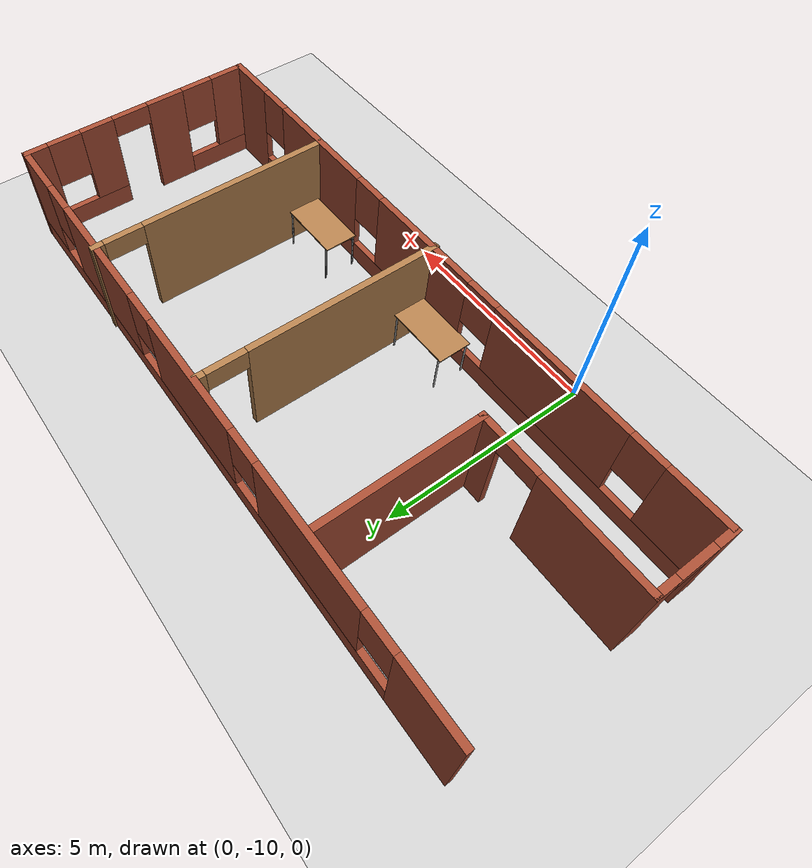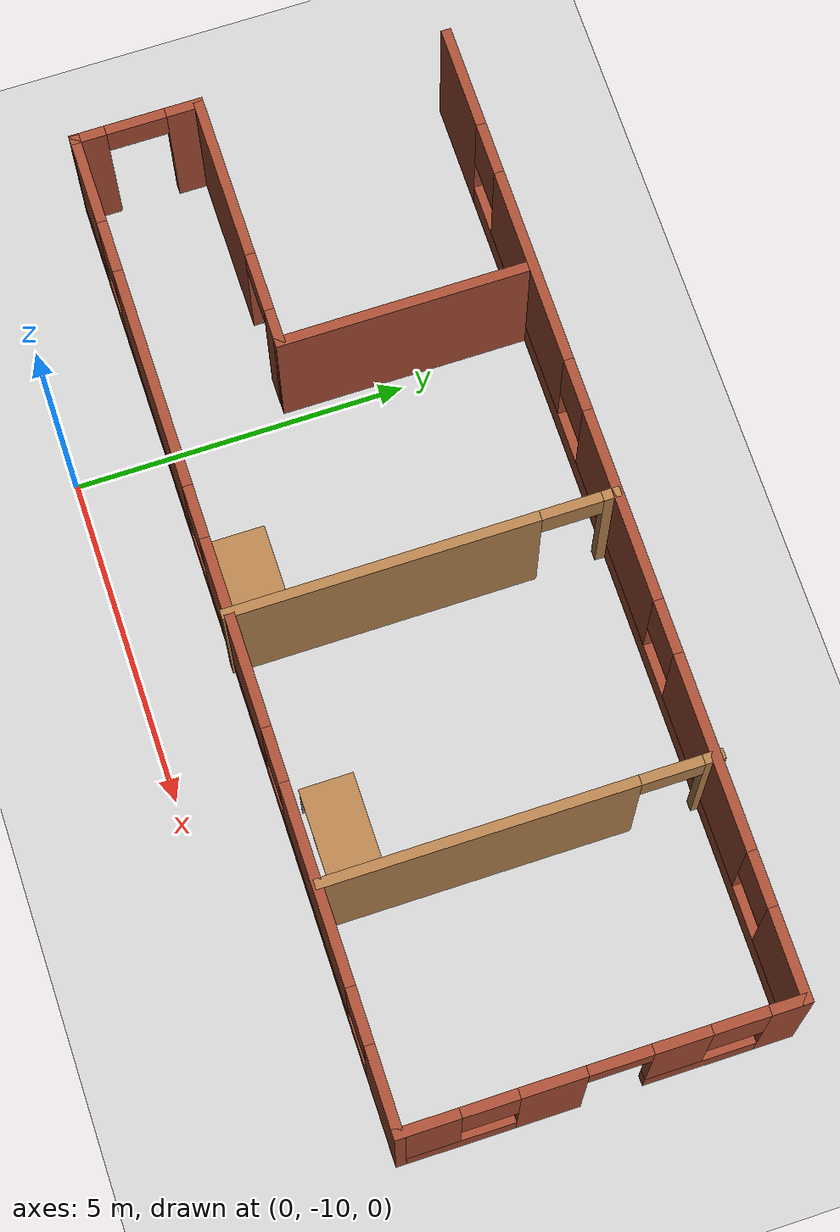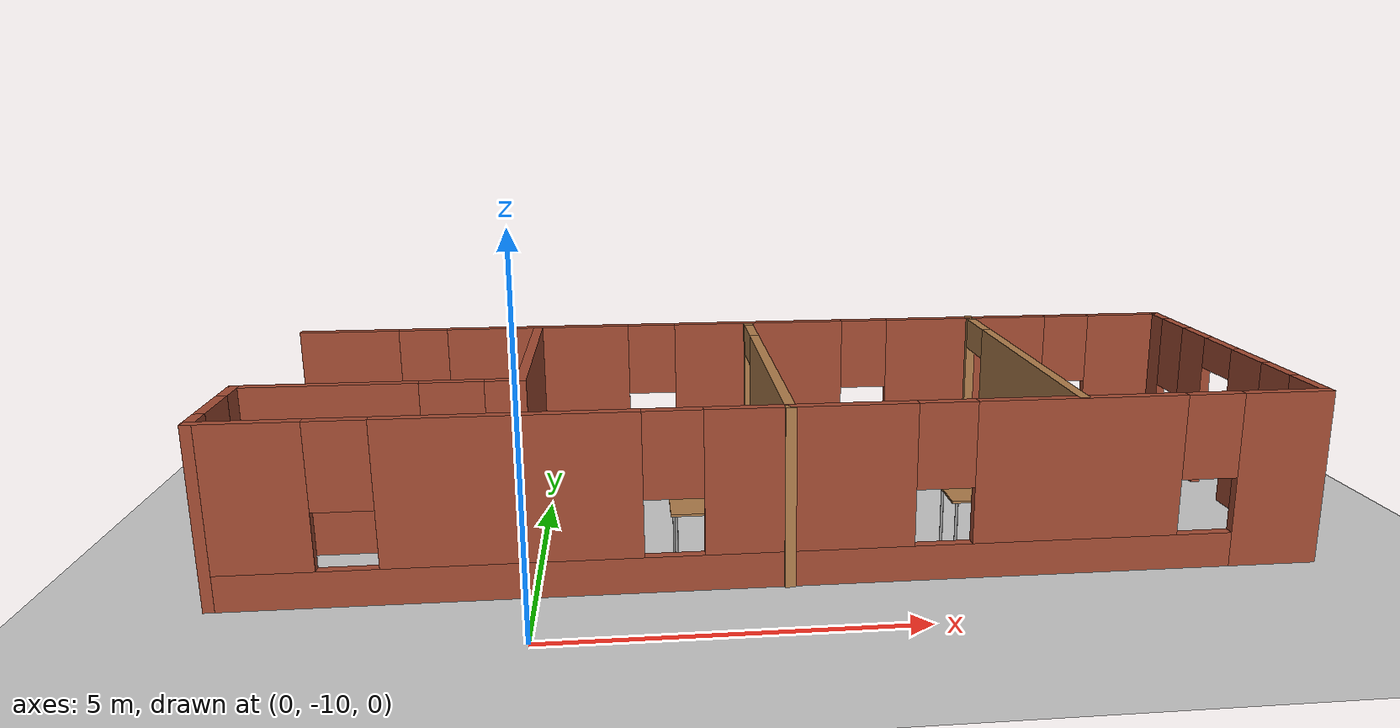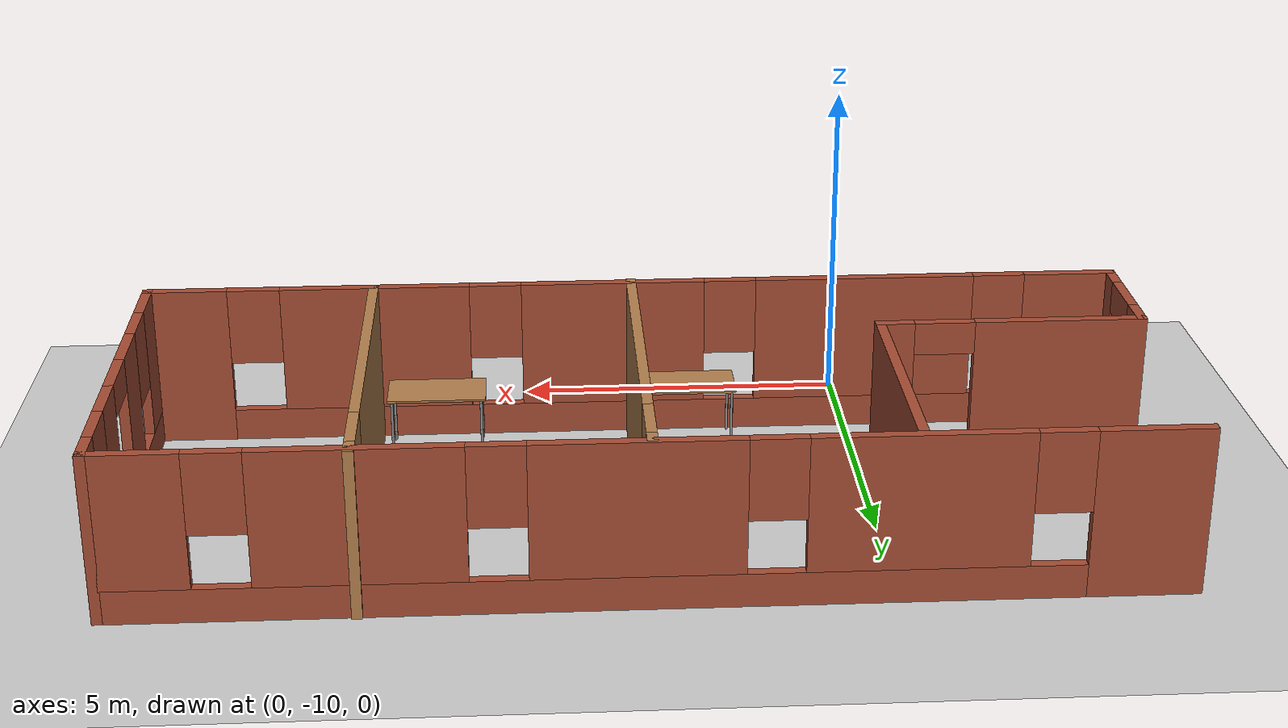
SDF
<sdf version="1.6">
 <world name="default">
  <model name="ground_plane">
   <static>1</static>
   <link name="link">
    <collision name="collision">
     <geometry><plane><normal>0 0 1</normal><size>100 100</size></plane></geometry>
     <surface><friction><ode><mu>100</mu><mu2>50</mu2></ode></friction></surface>
    </collision>
    <visual name="visual">
     <cast_shadows>0</cast_shadows>
     <geometry><plane><normal>0 0 1</normal><size>100 100</size></plane></geometry>
     <material>
      <script><uri>file://media/materials/scripts/gazebo.material</uri><name>Gazebo/Grey</name></script>
     </material>
    </visual>
   </link>
  </model>
  <model name="Building">
   <pose>3.31458 -5.75778 0 0 -0 0</pose>
   <link name="Wall_0">
    <pose>0.030417 2.79778 0 0 -0 0</pose>
    <visual name="Wall_0_Visual_0">
     <pose>-6.69722 0 1.25 0 -0 0</pose>
     <geometry><box><size>1.60557 0.15 2.5</size></box></geometry>
     <material>
      <script><uri>file://media/materials/scripts/gazebo.material</uri><name>Gazebo/Bricks</name></script>
      <ambient>0.996078 0.47451 0.0196078 1</ambient>
     </material>
     <meta><layer>0</layer></meta>
    </visual>
    <collision name="Wall_0_Collision_0">
     <geometry><box><size>1.60557 0.15 2.5</size></box></geometry>
     <pose>-6.69722 0 1.25 0 -0 0</pose>
    </collision>
    <visual name="Wall_0_Visual_1">
     <pose>0.802784 0 0.25 0 -0 0</pose>
     <geometry><box><size>13.3944 0.15 0.5</size></box></geometry>
     <material>
      <script><uri>file://media/materials/scripts/gazebo.material</uri><name>Gazebo/Bricks</name></script>
      <ambient>0.996078 0.47451 0.0196078 1</ambient>
     </material>
     <meta><layer>0</layer></meta>
    </visual>
    <collision name="Wall_0_Collision_1">
     <geometry><box><size>13.3944 0.15 0.5</size></box></geometry>
     <pose>0.802784 0 0.25 0 -0 0</pose>
    </collision>
    <visual name="Wall_0_Visual_2">
     <pose>-3.57459 0 1.5 0 -0 0</pose>
     <geometry><box><size>3.03968 0.15 2</size></box></geometry>
     <material>
      <script><uri>file://media/materials/scripts/gazebo.material</uri><name>Gazebo/Bricks</name></script>
      <ambient>0.996078 0.47451 0.0196078 1</ambient>
     </material>
     <meta><layer>0</layer></meta>
    </visual>
    <collision name="Wall_0_Collision_2">
     <geometry><box><size>3.03968 0.15 2</size></box></geometry>
     <pose>-3.57459 0 1.5 0 -0 0</pose>
    </collision>
    <visual name="Wall_0_Visual_3">
     <pose>0.207263 0 1.5 0 -0 0</pose>
     <geometry><box><size>2.92403 0.15 2</size></box></geometry>
     <material>
      <script><uri>file://media/materials/scripts/gazebo.material</uri><name>Gazebo/Bricks</name></script>
      <ambient>0.996078 0.47451 0.0196078 1</ambient>
     </material>
     <meta><layer>0</layer></meta>
    </visual>
    <collision name="Wall_0_Collision_3">
     <geometry><box><size>2.92403 0.15 2</size></box></geometry>
     <pose>0.207263 0 1.5 0 -0 0</pose>
    </collision>
    <visual name="Wall_0_Visual_4">
     <pose>3.90816 0 1.5 0 -0 0</pose>
     <geometry><box><size>2.87777 0.15 2</size></box></geometry>
     <material>
      <script><uri>file://media/materials/scripts/gazebo.material</uri><name>Gazebo/Bricks</name></script>
      <ambient>0.996078 0.47451 0.0196078 1</ambient>
     </material>
     <meta><layer>0</layer></meta>
    </visual>
    <collision name="Wall_0_Collision_4">
     <geometry><box><size>2.87777 0.15 2</size></box></geometry>
     <pose>3.90816 0 1.5 0 -0 0</pose>
    </collision>
    <visual name="Wall_0_Visual_5">
     <pose>6.82352 0 1.5 0 -0 0</pose>
     <geometry><box><size>1.35296 0.15 2</size></box></geometry>
     <material>
      <script><uri>file://media/materials/scripts/gazebo.material</uri><name>Gazebo/Bricks</name></script>
      <ambient>0.996078 0.47451 0.0196078 1</ambient>
     </material>
     <meta><layer>0</layer></meta>
    </visual>
    <collision name="Wall_0_Collision_5">
     <geometry><box><size>1.35296 0.15 2</size></box></geometry>
     <pose>6.82352 0 1.5 0 -0 0</pose>
    </collision>
    <visual name="Wall_0_Visual_6">
     <pose>-5.49443 0 1.9 0 -0 0</pose>
     <geometry><box><size>0.8 0.15 1.2</size></box></geometry>
     <material>
      <script><uri>file://media/materials/scripts/gazebo.material</uri><name>Gazebo/Bricks</name></script>
      <ambient>0.996078 0.47451 0.0196078 1</ambient>
     </material>
     <meta><layer>0</layer></meta>
    </visual>
    <collision name="Wall_0_Collision_6">
     <geometry><box><size>0.8 0.15 1.2</size></box></geometry>
     <pose>-5.49443 0 1.9 0 -0 0</pose>
    </collision>
    <visual name="Wall_0_Visual_7">
     <pose>-1.65475 0 1.9 0 -0 0</pose>
     <geometry><box><size>0.8 0.15 1.2</size></box></geometry>
     <material>
      <script><uri>file://media/materials/scripts/gazebo.material</uri><name>Gazebo/Bricks</name></script>
      <ambient>0.996078 0.47451 0.0196078 1</ambient>
     </material>
     <meta><layer>0</layer></meta>
    </visual>
    <collision name="Wall_0_Collision_7">
     <geometry><box><size>0.8 0.15 1.2</size></box></geometry>
     <pose>-1.65475 0 1.9 0 -0 0</pose>
    </collision>
    <visual name="Wall_0_Visual_8">
     <pose>2.06928 0 1.9 0 -0 0</pose>
     <geometry><box><size>0.8 0.15 1.2</size></box></geometry>
     <material>
      <script><uri>file://media/materials/scripts/gazebo.material</uri><name>Gazebo/Bricks</name></script>
      <ambient>0.996078 0.47451 0.0196078 1</ambient>
     </material>
     <meta><layer>0</layer></meta>
    </visual>
    <collision name="Wall_0_Collision_8">
     <geometry><box><size>0.8 0.15 1.2</size></box></geometry>
     <pose>2.06928 0 1.9 0 -0 0</pose>
    </collision>
    <visual name="Wall_0_Visual_9">
     <pose>5.74704 0 1.9 0 -0 0</pose>
     <geometry><box><size>0.8 0.15 1.2</size></box></geometry>
     <material>
      <script><uri>file://media/materials/scripts/gazebo.material</uri><name>Gazebo/Bricks</name></script>
      <ambient>0.996078 0.47451 0.0196078 1</ambient>
     </material>
     <meta><layer>0</layer></meta>
    </visual>
    <collision name="Wall_0_Collision_9">
     <geometry><box><size>0.8 0.15 1.2</size></box></geometry>
     <pose>5.74704 0 1.9 0 -0 0</pose>
    </collision>
   </link>
   <link name="Wall_1">
    <pose>7.45542 -0.002216 0 0 0 -1.5708</pose>
    <visual name="Wall_1_Visual_0">
     <pose>-2.5839 0 1.25 0 -0 0</pose>
     <geometry><box><size>0.582198 0.15 2.5</size></box></geometry>
     <material>
      <script><uri>file://media/materials/scripts/gazebo.material</uri><name>Gazebo/Bricks</name></script>
      <ambient>0.996078 0.47451 0.0196078 1</ambient>
     </material>
     <meta><layer>0</layer></meta>
    </visual>
    <collision name="Wall_1_Collision_0">
     <geometry><box><size>0.582198 0.15 2.5</size></box></geometry>
     <pose>-2.5839 0 1.25 0 -0 0</pose>
    </collision>
    <visual name="Wall_1_Visual_1">
     <pose>0.68813 0 1.25 0 -0 0</pose>
     <geometry><box><size>0.931057 0.15 2.5</size></box></geometry>
     <material>
      <script><uri>file://media/materials/scripts/gazebo.material</uri><name>Gazebo/Bricks</name></script>
      <ambient>0.996078 0.47451 0.0196078 1</ambient>
     </material>
     <meta><layer>0</layer></meta>
    </visual>
    <collision name="Wall_1_Collision_1">
     <geometry><box><size>0.931057 0.15 2.5</size></box></geometry>
     <pose>0.68813 0 1.25 0 -0 0</pose>
    </collision>
    <visual name="Wall_1_Visual_2">
     <pose>-1.4851 0 0.25 0 -0 0</pose>
     <geometry><box><size>1.6154 0.15 0.5</size></box></geometry>
     <material>
      <script><uri>file://media/materials/scripts/gazebo.material</uri><name>Gazebo/Bricks</name></script>
      <ambient>0.996078 0.47451 0.0196078 1</ambient>
     </material>
     <meta><layer>0</layer></meta>
    </visual>
    <collision name="Wall_1_Collision_2">
     <geometry><box><size>1.6154 0.15 0.5</size></box></geometry>
     <pose>-1.4851 0 0.25 0 -0 0</pose>
    </collision>
    <visual name="Wall_1_Visual_3">
     <pose>2.01433 0 0.25 0 -0 0</pose>
     <geometry><box><size>1.72134 0.15 0.5</size></box></geometry>
     <material>
      <script><uri>file://media/materials/scripts/gazebo.material</uri><name>Gazebo/Bricks</name></script>
      <ambient>0.996078 0.47451 0.0196078 1</ambient>
     </material>
     <meta><layer>0</layer></meta>
    </visual>
    <collision name="Wall_1_Collision_3">
     <geometry><box><size>1.72134 0.15 0.5</size></box></geometry>
     <pose>2.01433 0 0.25 0 -0 0</pose>
    </collision>
    <visual name="Wall_1_Visual_4">
     <pose>-1.0851 0 1.5 0 -0 0</pose>
     <geometry><box><size>0.815404 0.15 2</size></box></geometry>
     <material>
      <script><uri>file://media/materials/scripts/gazebo.material</uri><name>Gazebo/Bricks</name></script>
      <ambient>0.996078 0.47451 0.0196078 1</ambient>
     </material>
     <meta><layer>0</layer></meta>
    </visual>
    <collision name="Wall_1_Collision_4">
     <geometry><box><size>0.815404 0.15 2</size></box></geometry>
     <pose>-1.0851 0 1.5 0 -0 0</pose>
    </collision>
    <visual name="Wall_1_Visual_5">
     <pose>-1.0851 0 1.5 0 -0 0</pose>
     <geometry><box><size>0.815404 0.15 2</size></box></geometry>
     <material>
      <script><uri>file://media/materials/scripts/gazebo.material</uri><name>Gazebo/Bricks</name></script>
      <ambient>0.996078 0.47451 0.0196078 1</ambient>
     </material>
     <meta><layer>0</layer></meta>
    </visual>
    <collision name="Wall_1_Collision_5">
     <geometry><box><size>0.815404 0.15 2</size></box></geometry>
     <pose>-1.0851 0 1.5 0 -0 0</pose>
    </collision>
    <visual name="Wall_1_Visual_6">
     <pose>2.41433 0 1.5 0 -0 0</pose>
     <geometry><box><size>0.921342 0.15 2</size></box></geometry>
     <material>
      <script><uri>file://media/materials/scripts/gazebo.material</uri><name>Gazebo/Bricks</name></script>
      <ambient>0.996078 0.47451 0.0196078 1</ambient>
     </material>
     <meta><layer>0</layer></meta>
    </visual>
    <collision name="Wall_1_Collision_6">
     <geometry><box><size>0.921342 0.15 2</size></box></geometry>
     <pose>2.41433 0 1.5 0 -0 0</pose>
    </collision>
    <visual name="Wall_1_Visual_7">
     <pose>-1.8928 0 1.9 0 -0 0</pose>
     <geometry><box><size>0.8 0.15 1.2</size></box></geometry>
     <material>
      <script><uri>file://media/materials/scripts/gazebo.material</uri><name>Gazebo/Bricks</name></script>
      <ambient>0.996078 0.47451 0.0196078 1</ambient>
     </material>
     <meta><layer>0</layer></meta>
    </visual>
    <collision name="Wall_1_Collision_7">
     <geometry><box><size>0.8 0.15 1.2</size></box></geometry>
     <pose>-1.8928 0 1.9 0 -0 0</pose>
    </collision>
    <visual name="Wall_1_Visual_8">
     <pose>1.55366 0 1.9 0 -0 0</pose>
     <geometry><box><size>0.8 0.15 1.2</size></box></geometry>
     <material>
      <script><uri>file://media/materials/scripts/gazebo.material</uri><name>Gazebo/Bricks</name></script>
      <ambient>0.996078 0.47451 0.0196078 1</ambient>
     </material>
     <meta><layer>0</layer></meta>
    </visual>
    <collision name="Wall_1_Collision_8">
     <geometry><box><size>0.8 0.15 1.2</size></box></geometry>
     <pose>1.55366 0 1.9 0 -0 0</pose>
    </collision>
    <visual name="Wall_1_Visual_9">
     <pose>-0.227398 0 2.25 0 -0 0</pose>
     <geometry><box><size>0.9 0.15 0.5</size></box></geometry>
     <material>
      <script><uri>file://media/materials/scripts/gazebo.material</uri><name>Gazebo/Bricks</name></script>
      <ambient>0.996078 0.47451 0.0196078 1</ambient>
     </material>
     <meta><layer>0</layer></meta>
    </visual>
    <collision name="Wall_1_Collision_9">
     <geometry><box><size>0.9 0.15 0.5</size></box></geometry>
     <pose>-0.227398 0 2.25 0 -0 0</pose>
    </collision>
    <visual name="Wall_1_Visual_10">
     <pose>-0.227398 0 2.25 0 -0 0</pose>
     <geometry><box><size>0.9 0.15 0.5</size></box></geometry>
     <material>
      <script><uri>file://media/materials/scripts/gazebo.material</uri><name>Gazebo/Bricks</name></script>
      <ambient>0.996078 0.47451 0.0196078 1</ambient>
     </material>
     <meta><layer>0</layer></meta>
    </visual>
    <collision name="Wall_1_Collision_10">
     <geometry><box><size>0.9 0.15 0.5</size></box></geometry>
     <pose>-0.227398 0 2.25 0 -0 0</pose>
    </collision>
   </link>
   <link name="Wall_2">
    <pose>0.007604 -2.80222 0 0 -0 3.14159</pose>
    <visual name="Wall_2_Visual_0">
     <pose>-6.88103 0 1.25 0 -0 0</pose>
     <geometry><box><size>1.28356 0.15 2.5</size></box></geometry>
     <material>
      <script><uri>file://media/materials/scripts/gazebo.material</uri><name>Gazebo/Bricks</name></script>
      <ambient>0.996078 0.47451 0.0196078 1</ambient>
     </material>
     <meta><layer>0</layer></meta>
    </visual>
    <collision name="Wall_2_Collision_0">
     <geometry><box><size>1.28356 0.15 2.5</size></box></geometry>
     <pose>-6.88103 0 1.25 0 -0 0</pose>
    </collision>
    <visual name="Wall_2_Visual_1">
     <pose>0.641782 0 0.25 0 -0 0</pose>
     <geometry><box><size>13.7621 0.15 0.5</size></box></geometry>
     <material>
      <script><uri>file://media/materials/scripts/gazebo.material</uri><name>Gazebo/Bricks</name></script>
      <ambient>0.996078 0.47451 0.0196078 1</ambient>
     </material>
     <meta><layer>0</layer></meta>
    </visual>
    <collision name="Wall_2_Collision_1">
     <geometry><box><size>13.7621 0.15 0.5</size></box></geometry>
     <pose>0.641782 0 0.25 0 -0 0</pose>
    </collision>
    <visual name="Wall_2_Visual_2">
     <pose>-3.9888 0 1.5 0 -0 0</pose>
     <geometry><box><size>2.9009 0.15 2</size></box></geometry>
     <material>
      <script><uri>file://media/materials/scripts/gazebo.material</uri><name>Gazebo/Bricks</name></script>
      <ambient>0.996078 0.47451 0.0196078 1</ambient>
     </material>
     <meta><layer>0</layer></meta>
    </visual>
    <collision name="Wall_2_Collision_2">
     <geometry><box><size>2.9009 0.15 2</size></box></geometry>
     <pose>-3.9888 0 1.5 0 -0 0</pose>
    </collision>
    <visual name="Wall_2_Visual_3">
     <pose>-0.321831 0 1.5 0 -0 0</pose>
     <geometry><box><size>2.83304 0.15 2</size></box></geometry>
     <material>
      <script><uri>file://media/materials/scripts/gazebo.material</uri><name>Gazebo/Bricks</name></script>
      <ambient>0.996078 0.47451 0.0196078 1</ambient>
     </material>
     <meta><layer>0</layer></meta>
    </visual>
    <collision name="Wall_2_Collision_3">
     <geometry><box><size>2.83304 0.15 2</size></box></geometry>
     <pose>-0.321831 0 1.5 0 -0 0</pose>
    </collision>
    <visual name="Wall_2_Visual_4">
     <pose>3.59656 0 1.5 0 -0 0</pose>
     <geometry><box><size>3.40374 0.15 2</size></box></geometry>
     <material>
      <script><uri>file://media/materials/scripts/gazebo.material</uri><name>Gazebo/Bricks</name></script>
      <ambient>0.996078 0.47451 0.0196078 1</ambient>
     </material>
     <meta><layer>0</layer></meta>
    </visual>
    <collision name="Wall_2_Collision_4">
     <geometry><box><size>3.40374 0.15 2</size></box></geometry>
     <pose>3.59656 0 1.5 0 -0 0</pose>
    </collision>
    <visual name="Wall_2_Visual_5">
     <pose>6.81062 0 1.5 0 -0 0</pose>
     <geometry><box><size>1.42439 0.15 2</size></box></geometry>
     <material>
      <script><uri>file://media/materials/scripts/gazebo.material</uri><name>Gazebo/Bricks</name></script>
      <ambient>0.996078 0.47451 0.0196078 1</ambient>
     </material>
     <meta><layer>0</layer></meta>
    </visual>
    <collision name="Wall_2_Collision_5">
     <geometry><box><size>1.42439 0.15 2</size></box></geometry>
     <pose>6.81062 0 1.5 0 -0 0</pose>
    </collision>
    <visual name="Wall_2_Visual_6">
     <pose>-5.83925 0 1.9 0 -0 0</pose>
     <geometry><box><size>0.8 0.15 1.2</size></box></geometry>
     <material>
      <script><uri>file://media/materials/scripts/gazebo.material</uri><name>Gazebo/Bricks</name></script>
      <ambient>0.996078 0.47451 0.0196078 1</ambient>
     </material>
     <meta><layer>0</layer></meta>
    </visual>
    <collision name="Wall_2_Collision_6">
     <geometry><box><size>0.8 0.15 1.2</size></box></geometry>
     <pose>-5.83925 0 1.9 0 -0 0</pose>
    </collision>
    <visual name="Wall_2_Visual_7">
     <pose>-2.13835 0 1.9 0 -0 0</pose>
     <geometry><box><size>0.8 0.15 1.2</size></box></geometry>
     <material>
      <script><uri>file://media/materials/scripts/gazebo.material</uri><name>Gazebo/Bricks</name></script>
      <ambient>0.996078 0.47451 0.0196078 1</ambient>
     </material>
     <meta><layer>0</layer></meta>
    </visual>
    <collision name="Wall_2_Collision_7">
     <geometry><box><size>0.8 0.15 1.2</size></box></geometry>
     <pose>-2.13835 0 1.9 0 -0 0</pose>
    </collision>
    <visual name="Wall_2_Visual_8">
     <pose>1.49469 0 1.9 0 -0 0</pose>
     <geometry><box><size>0.8 0.15 1.2</size></box></geometry>
     <material>
      <script><uri>file://media/materials/scripts/gazebo.material</uri><name>Gazebo/Bricks</name></script>
      <ambient>0.996078 0.47451 0.0196078 1</ambient>
     </material>
     <meta><layer>0</layer></meta>
    </visual>
    <collision name="Wall_2_Collision_8">
     <geometry><box><size>0.8 0.15 1.2</size></box></geometry>
     <pose>1.49469 0 1.9 0 -0 0</pose>
    </collision>
    <visual name="Wall_2_Visual_9">
     <pose>5.69843 0 1.9 0 -0 0</pose>
     <geometry><box><size>0.8 0.15 1.2</size></box></geometry>
     <material>
      <script><uri>file://media/materials/scripts/gazebo.material</uri><name>Gazebo/Bricks</name></script>
      <ambient>0.996078 0.47451 0.0196078 1</ambient>
     </material>
     <meta><layer>0</layer></meta>
    </visual>
    <collision name="Wall_2_Collision_9">
     <geometry><box><size>0.8 0.15 1.2</size></box></geometry>
     <pose>5.69843 0 1.9 0 -0 0</pose>
    </collision>
   </link>
   <link name="Wall_3">
    <pose>-7.45542 -1.87722 0 0 -0 1.5708</pose>
    <visual name="Wall_3_Visual_0">
     <pose>-0.736618 0 1.25 0 -0 0</pose>
     <geometry><box><size>0.526763 0.15 2.5</size></box></geometry>
     <material>
      <script><uri>file://media/materials/scripts/gazebo.material</uri><name>Gazebo/Bricks</name></script>
      <ambient>0.996078 0.47451 0.0196078 1</ambient>
     </material>
     <meta><layer>0</layer></meta>
    </visual>
    <collision name="Wall_3_Collision_0">
     <geometry><box><size>0.526763 0.15 2.5</size></box></geometry>
     <pose>-0.736618 0 1.25 0 -0 0</pose>
    </collision>
    <visual name="Wall_3_Visual_1">
     <pose>0.713382 0 1.25 0 -0 0</pose>
     <geometry><box><size>0.573237 0.15 2.5</size></box></geometry>
     <material>
      <script><uri>file://media/materials/scripts/gazebo.material</uri><name>Gazebo/Bricks</name></script>
      <ambient>0.996078 0.47451 0.0196078 1</ambient>
     </material>
     <meta><layer>0</layer></meta>
    </visual>
    <collision name="Wall_3_Collision_1">
     <geometry><box><size>0.573237 0.15 2.5</size></box></geometry>
     <pose>0.713382 0 1.25 0 -0 0</pose>
    </collision>
    <visual name="Wall_3_Visual_2">
     <pose>-0.023237 0 2.25 0 -0 0</pose>
     <geometry><box><size>0.9 0.15 0.5</size></box></geometry>
     <material>
      <script><uri>file://media/materials/scripts/gazebo.material</uri><name>Gazebo/Bricks</name></script>
      <ambient>0.996078 0.47451 0.0196078 1</ambient>
     </material>
     <meta><layer>0</layer></meta>
    </visual>
    <collision name="Wall_3_Collision_2">
     <geometry><box><size>0.9 0.15 0.5</size></box></geometry>
     <pose>-0.023237 0 2.25 0 -0 0</pose>
    </collision>
   </link>
   <link name="Wall_4">
    <pose>-5.5 -0.952216 0 0 -0 0</pose>
    <visual name="Wall_4_Visual_0">
     <pose>-0.742269 0 1.25 0 -0 0</pose>
     <geometry><box><size>2.5763 0.15 2.5</size></box></geometry>
     <material>
      <script><uri>file://media/materials/scripts/gazebo.material</uri><name>Gazebo/Bricks</name></script>
      <ambient>0.996078 0.47451 0.0196078 1</ambient>
     </material>
     <meta><layer>0</layer></meta>
    </visual>
    <collision name="Wall_4_Collision_0">
     <geometry><box><size>2.5763 0.15 2.5</size></box></geometry>
     <pose>-0.742269 0 1.25 0 -0 0</pose>
    </collision>
    <visual name="Wall_4_Visual_1">
     <pose>1.73815 0 1.25 0 -0 0</pose>
     <geometry><box><size>0.584538 0.15 2.5</size></box></geometry>
     <material>
      <script><uri>file://media/materials/scripts/gazebo.material</uri><name>Gazebo/Bricks</name></script>
      <ambient>0.996078 0.47451 0.0196078 1</ambient>
     </material>
     <meta><layer>0</layer></meta>
    </visual>
    <collision name="Wall_4_Collision_1">
     <geometry><box><size>0.584538 0.15 2.5</size></box></geometry>
     <pose>1.73815 0 1.25 0 -0 0</pose>
    </collision>
    <visual name="Wall_4_Visual_2">
     <pose>0.99588 0 2.25 0 -0 0</pose>
     <geometry><box><size>0.9 0.15 0.5</size></box></geometry>
     <material>
      <script><uri>file://media/materials/scripts/gazebo.material</uri><name>Gazebo/Bricks</name></script>
      <ambient>0.996078 0.47451 0.0196078 1</ambient>
     </material>
     <meta><layer>0</layer></meta>
    </visual>
    <collision name="Wall_4_Collision_2">
     <geometry><box><size>0.9 0.15 0.5</size></box></geometry>
     <pose>0.99588 0 2.25 0 -0 0</pose>
    </collision>
   </link>
   <link name="Wall_5">
    <collision name="Wall_5_Collision">
     <geometry><box><size>3.75 0.15 2.5</size></box></geometry>
     <pose>0 0 1.25 0 -0 0</pose>
    </collision>
    <visual name="Wall_5_Visual">
     <pose>0 0 1.25 0 -0 0</pose>
     <geometry><box><size>3.75 0.15 2.5</size></box></geometry>
     <material>
      <script><uri>file://media/materials/scripts/gazebo.material</uri><name>Gazebo/Bricks</name></script>
      <ambient>0.996078 0.47451 0.0196078 1</ambient>
     </material>
     <meta><layer>0</layer></meta>
    </visual>
    <pose>-3.54458 0.847784 0 0 -0 1.5708</pose>
   </link>
   <link name="Wall_7">
    <pose>0.047518 -0.038022 0 0 0 -1.5708</pose>
    <visual name="Wall_7_Visual_0">
     <pose>-2.74246 0 1.25 0 -0 0</pose>
     <geometry><box><size>0.265086 0.15 2.5</size></box></geometry>
     <material>
      <script><uri>file://media/materials/scripts/gazebo.material</uri><name>Gazebo/Wood</name></script>
      <ambient>0.996078 0.47451 0.0196078 1</ambient>
     </material>
     <meta><layer>0</layer></meta>
    </visual>
    <collision name="Wall_7_Collision_0">
     <geometry><box><size>0.265086 0.15 2.5</size></box></geometry>
     <pose>-2.74246 0 1.25 0 -0 0</pose>
    </collision>
    <visual name="Wall_7_Visual_1">
     <pose>0.582543 0 1.25 0 -0 0</pose>
     <geometry><box><size>4.58491 0.15 2.5</size></box></geometry>
     <material>
      <script><uri>file://media/materials/scripts/gazebo.material</uri><name>Gazebo/Wood</name></script>
      <ambient>0.996078 0.47451 0.0196078 1</ambient>
     </material>
     <meta><layer>0</layer></meta>
    </visual>
    <collision name="Wall_7_Collision_1">
     <geometry><box><size>4.58491 0.15 2.5</size></box></geometry>
     <pose>0.582543 0 1.25 0 -0 0</pose>
    </collision>
    <visual name="Wall_7_Visual_2">
     <pose>-2.15991 0 2.25 0 -0 0</pose>
     <geometry><box><size>0.9 0.15 0.5</size></box></geometry>
     <material>
      <script><uri>file://media/materials/scripts/gazebo.material</uri><name>Gazebo/Wood</name></script>
      <ambient>0.996078 0.47451 0.0196078 1</ambient>
     </material>
     <meta><layer>0</layer></meta>
    </visual>
    <collision name="Wall_7_Collision_2">
     <geometry><box><size>0.9 0.15 0.5</size></box></geometry>
     <pose>-2.15991 0 2.25 0 -0 0</pose>
    </collision>
   </link>
   <link name="Wall_9">
    <pose>4.00887 0.038022 0 0 0 -1.5708</pose>
    <visual name="Wall_9_Visual_0">
     <pose>-2.72757 0 1.25 0 -0 0</pose>
     <geometry><box><size>0.294869 0.15 2.5</size></box></geometry>
     <material>
      <script><uri>file://media/materials/scripts/gazebo.material</uri><name>Gazebo/Wood</name></script>
      <ambient>0.996078 0.47451 0.0196078 1</ambient>
     </material>
     <meta><layer>0</layer></meta>
    </visual>
    <collision name="Wall_9_Collision_0">
     <geometry><box><size>0.294869 0.15 2.5</size></box></geometry>
     <pose>-2.72757 0 1.25 0 -0 0</pose>
    </collision>
    <visual name="Wall_9_Visual_1">
     <pose>0.597434 0 1.25 0 -0 0</pose>
     <geometry><box><size>4.55513 0.15 2.5</size></box></geometry>
     <material>
      <script><uri>file://media/materials/scripts/gazebo.material</uri><name>Gazebo/Wood</name></script>
      <ambient>0.996078 0.47451 0.0196078 1</ambient>
     </material>
     <meta><layer>0</layer></meta>
    </visual>
    <collision name="Wall_9_Collision_1">
     <geometry><box><size>4.55513 0.15 2.5</size></box></geometry>
     <pose>0.597434 0 1.25 0 -0 0</pose>
    </collision>
    <visual name="Wall_9_Visual_2">
     <pose>-2.13013 0 2.25 0 -0 0</pose>
     <geometry><box><size>0.9 0.15 0.5</size></box></geometry>
     <material>
      <script><uri>file://media/materials/scripts/gazebo.material</uri><name>Gazebo/Wood</name></script>
      <ambient>0.996078 0.47451 0.0196078 1</ambient>
     </material>
     <meta><layer>0</layer></meta>
    </visual>
    <collision name="Wall_9_Collision_2">
     <geometry><box><size>0.9 0.15 0.5</size></box></geometry>
     <pose>-2.13013 0 2.25 0 -0 0</pose>
    </collision>
   </link>
   <static>1</static>
  </model>
  <model name="table">
   <static>1</static>
   <link name="link">
    <collision name="surface">
     <pose>0 0 1 0 -0 0</pose>
     <geometry><box><size>1.5 0.8 0.03</size></box></geometry>
     <surface><friction><ode><mu>0.6</mu><mu2>0.6</mu2></ode></friction></surface>
    </collision>
    <visual name="visual1">
     <pose>0 0 1 0 -0 0</pose>
     <geometry><box><size>1.5 0.8 0.03</size></box></geometry>
     <material>
      <script><uri>file://media/materials/scripts/gazebo.material</uri><name>Gazebo/Wood</name></script>
     </material>
    </visual>
    <collision name="front_left_leg">
     <pose>0.68 0.38 0.5 0 -0 0</pose>
     <geometry><cylinder><radius>0.02</radius><length>1</length></cylinder></geometry>
    </collision>
    <visual name="front_left_leg">
     <pose>0.68 0.38 0.5 0 -0 0</pose>
     <geometry><cylinder><radius>0.02</radius><length>1</length></cylinder></geometry>
     <material>
      <script><uri>file://media/materials/scripts/gazebo.material</uri><name>Gazebo/Grey</name></script>
     </material>
    </visual>
    <collision name="front_right_leg">
     <pose>0.68 -0.38 0.5 0 -0 0</pose>
     <geometry><cylinder><radius>0.02</radius><length>1</length></cylinder></geometry>
    </collision>
    <visual name="front_right_leg">
     <pose>0.68 -0.38 0.5 0 -0 0</pose>
     <geometry><cylinder><radius>0.02</radius><length>1</length></cylinder></geometry>
     <material>
      <script><uri>file://media/materials/scripts/gazebo.material</uri><name>Gazebo/Grey</name></script>
     </material>
    </visual>
    <collision name="back_right_leg">
     <pose>-0.68 -0.38 0.5 0 -0 0</pose>
     <geometry><cylinder><radius>0.02</radius><length>1</length></cylinder></geometry>
    </collision>
    <visual name="back_right_leg">
     <pose>-0.68 -0.38 0.5 0 -0 0</pose>
     <geometry><cylinder><radius>0.02</radius><length>1</length></cylinder></geometry>
     <material>
      <script><uri>file://media/materials/scripts/gazebo.material</uri><name>Gazebo/Grey</name></script>
     </material>
    </visual>
    <collision name="back_left_leg">
     <pose>-0.68 0.38 0.5 0 -0 0</pose>
     <geometry><cylinder><radius>0.02</radius><length>1</length></cylinder></geometry>
    </collision>
    <visual name="back_left_leg">
     <pose>-0.68 0.38 0.5 0 -0 0</pose>
     <geometry><cylinder><radius>0.02</radius><length>1</length></cylinder></geometry>
     <material>
      <script><uri>file://media/materials/scripts/gazebo.material</uri><name>Gazebo/Grey</name></script>
     </material>
    </visual>
   </link>
   <pose>2.5373 -8.04266 0 0 -0 0</pose>
  </model>
  <model name="table_0">
   <static>1</static>
   <link name="link">
    <collision name="surface">
     <pose>0 0 1 0 -0 0</pose>
     <geometry><box><size>1.5 0.8 0.03</size></box></geometry>
     <surface><friction><ode><mu>0.6</mu><mu2>0.6</mu2></ode></friction></surface>
    </collision>
    <visual name="visual1">
     <pose>0 0 1 0 -0 0</pose>
     <geometry><box><size>1.5 0.8 0.03</size></box></geometry>
     <material>
      <script><uri>file://media/materials/scripts/gazebo.material</uri><name>Gazebo/Wood</name></script>
     </material>
    </visual>
    <collision name="front_left_leg">
     <pose>0.68 0.38 0.5 0 -0 0</pose>
     <geometry><cylinder><radius>0.02</radius><length>1</length></cylinder></geometry>
    </collision>
    <visual name="front_left_leg">
     <pose>0.68 0.38 0.5 0 -0 0</pose>
     <geometry><cylinder><radius>0.02</radius><length>1</length></cylinder></geometry>
     <material>
      <script><uri>file://media/materials/scripts/gazebo.material</uri><name>Gazebo/Grey</name></script>
     </material>
    </visual>
    <collision name="front_right_leg">
     <pose>0.68 -0.38 0.5 0 -0 0</pose>
     <geometry><cylinder><radius>0.02</radius><length>1</length></cylinder></geometry>
    </collision>
    <visual name="front_right_leg">
     <pose>0.68 -0.38 0.5 0 -0 0</pose>
     <geometry><cylinder><radius>0.02</radius><length>1</length></cylinder></geometry>
     <material>
      <script><uri>file://media/materials/scripts/gazebo.material</uri><name>Gazebo/Grey</name></script>
     </material>
    </visual>
    <collision name="back_right_leg">
     <pose>-0.68 -0.38 0.5 0 -0 0</pose>
     <geometry><cylinder><radius>0.02</radius><length>1</length></cylinder></geometry>
    </collision>
    <visual name="back_right_leg">
     <pose>-0.68 -0.38 0.5 0 -0 0</pose>
     <geometry><cylinder><radius>0.02</radius><length>1</length></cylinder></geometry>
     <material>
      <script><uri>file://media/materials/scripts/gazebo.material</uri><name>Gazebo/Grey</name></script>
     </material>
    </visual>
    <collision name="back_left_leg">
     <pose>-0.68 0.38 0.5 0 -0 0</pose>
     <geometry><cylinder><radius>0.02</radius><length>1</length></cylinder></geometry>
    </collision>
    <visual name="back_left_leg">
     <pose>-0.68 0.38 0.5 0 -0 0</pose>
     <geometry><cylinder><radius>0.02</radius><length>1</length></cylinder></geometry>
     <material>
      <script><uri>file://media/materials/scripts/gazebo.material</uri><name>Gazebo/Grey</name></script>
     </material>
    </visual>
   </link>
   <pose>6.38448 -7.94936 0 0 -0 0</pose>
  </model>
 </world>
</sdf>
